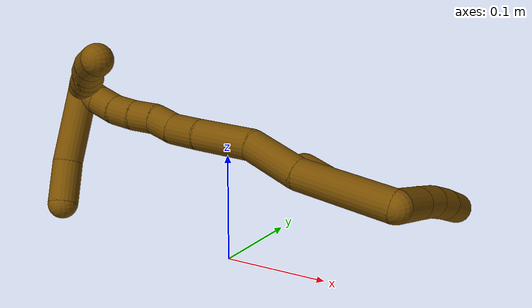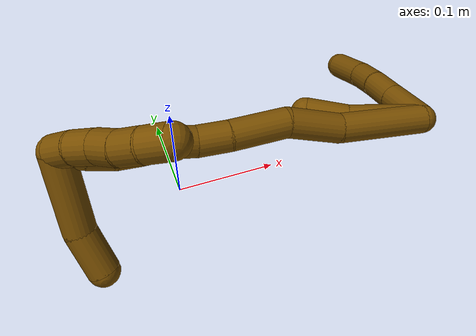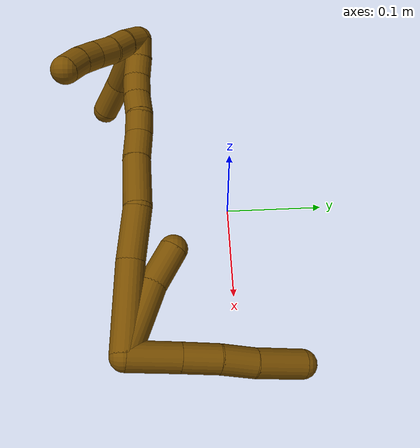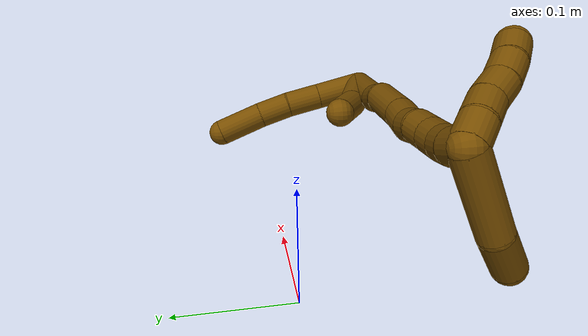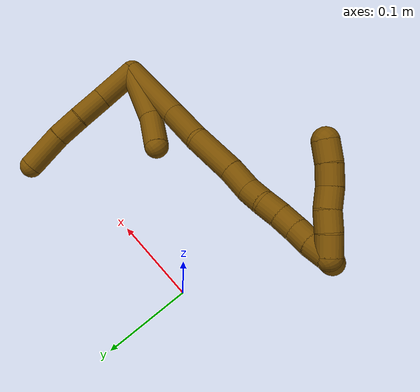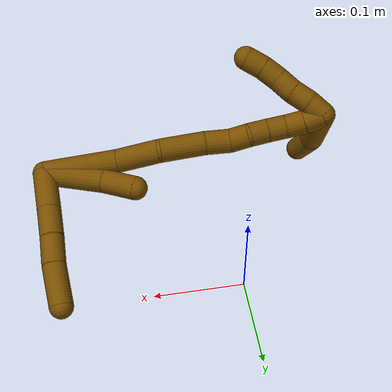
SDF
<sdf version="1.7">
 <world name="default">
  <model name="12">
   <static>0</static>
   <link name="12">
    <collision name="collision-cylinder-e_1_2_8">
     <pose>-0.000169 -0.004539 -0.021654 2.93497 -0.007652 -0.073768</pose>
     <geometry><cylinder><radius>0.0125</radius><length>0.04425</length></cylinder></geometry>
     <surface>
      <friction><ode><mu>1.16</mu><mu2>1.16</mu2><slip1>0</slip1><slip2>0</slip2></ode></friction>
      <contact><ode><kp>1e+06</kp><kd>1</kd><max_vel>0</max_vel><min_depth>0.001</min_depth></ode></contact>
     </surface>
    </collision>
    <visual name="visual-cylinder-e_1_2_8">
     <pose>-0.000169 -0.004539 -0.021654 2.93497 -0.007652 -0.073768</pose>
     <geometry><cylinder><radius>0.0125</radius><length>0.04425</length></cylinder></geometry>
     <material><ambient>0.466667 0.301961 0 1</ambient></material>
    </visual>
    <collision name="collision-cylinder-e_2_8_9">
     <pose>-0.000291 -0.012354 -0.058922 2.93476 0.002992 0.028831</pose>
     <geometry><cylinder><radius>0.0125</radius><length>0.031909</length></cylinder></geometry>
     <surface>
      <friction><ode><mu>1.16</mu><mu2>1.16</mu2><slip1>0</slip1><slip2>0</slip2></ode></friction>
      <contact><ode><kp>1e+06</kp><kd>1</kd><max_vel>0</max_vel><min_depth>0.001</min_depth></ode></contact>
     </surface>
    </collision>
    <visual name="visual-cylinder-e_2_8_9">
     <pose>-0.000291 -0.012354 -0.058922 2.93476 0.002992 0.028831</pose>
     <geometry><cylinder><radius>0.0125</radius><length>0.031909</length></cylinder></geometry>
     <material><ambient>0.466667 0.301961 0 1</ambient></material>
    </visual>
    <collision name="collision-cylinder-e_3_9_10">
     <pose>0.000468 -0.020099 -0.088816 2.83831 0.047513 0.308509</pose>
     <geometry><cylinder><radius>0.0125</radius><length>0.029958</length></cylinder></geometry>
     <surface>
      <friction><ode><mu>1.16</mu><mu2>1.16</mu2><slip1>0</slip1><slip2>0</slip2></ode></friction>
      <contact><ode><kp>1e+06</kp><kd>1</kd><max_vel>0</max_vel><min_depth>0.001</min_depth></ode></contact>
     </surface>
    </collision>
    <visual name="visual-cylinder-e_3_9_10">
     <pose>0.000468 -0.020099 -0.088816 2.83831 0.047513 0.308509</pose>
     <geometry><cylinder><radius>0.0125</radius><length>0.029958</length></cylinder></geometry>
     <material><ambient>0.466667 0.301961 0 1</ambient></material>
    </visual>
    <collision name="collision-cylinder-e_4_10_6">
     <pose>0.000134 -0.031973 -0.123722 2.79692 -0.047674 -0.272254</pose>
     <geometry><cylinder><radius>0.0125</radius><length>0.043883</length></cylinder></geometry>
     <surface>
      <friction><ode><mu>1.16</mu><mu2>1.16</mu2><slip1>0</slip1><slip2>0</slip2></ode></friction>
      <contact><ode><kp>1e+06</kp><kd>1</kd><max_vel>0</max_vel><min_depth>0.001</min_depth></ode></contact>
     </surface>
    </collision>
    <visual name="visual-cylinder-e_4_10_6">
     <pose>0.000134 -0.031973 -0.123722 2.79692 -0.047674 -0.272254</pose>
     <geometry><cylinder><radius>0.0125</radius><length>0.043883</length></cylinder></geometry>
     <material><ambient>0.466667 0.301961 0 1</ambient></material>
    </visual>
    <collision name="collision-cylinder-e_1_2_11">
     <pose>-0.030064 -0.002018 -0.010281 2.9478 -1.23547 -2.86966</pose>
     <geometry><cylinder><radius>0.0125</radius><length>0.063675</length></cylinder></geometry>
     <surface>
      <friction><ode><mu>1.16</mu><mu2>1.16</mu2><slip1>0</slip1><slip2>0</slip2></ode></friction>
      <contact><ode><kp>1e+06</kp><kd>1</kd><max_vel>0</max_vel><min_depth>0.001</min_depth></ode></contact>
     </surface>
    </collision>
    <visual name="visual-cylinder-e_1_2_11">
     <pose>-0.030064 -0.002018 -0.010281 2.9478 -1.23547 -2.86966</pose>
     <geometry><cylinder><radius>0.0125</radius><length>0.063675</length></cylinder></geometry>
     <material><ambient>0.466667 0.301961 0 1</ambient></material>
    </visual>
    <collision name="collision-cylinder-e_2_11_5">
     <pose>-0.076015 -0.003647 -0.029355 -3.09746 -1.06483 3.06671</pose>
     <geometry><cylinder><radius>0.0125</radius><length>0.036325</length></cylinder></geometry>
     <surface>
      <friction><ode><mu>1.16</mu><mu2>1.16</mu2><slip1>0</slip1><slip2>0</slip2></ode></friction>
      <contact><ode><kp>1e+06</kp><kd>1</kd><max_vel>0</max_vel><min_depth>0.001</min_depth></ode></contact>
     </surface>
    </collision>
    <visual name="visual-cylinder-e_2_11_5">
     <pose>-0.076015 -0.003647 -0.029355 -3.09746 -1.06483 3.06671</pose>
     <geometry><cylinder><radius>0.0125</radius><length>0.036325</length></cylinder></geometry>
     <material><ambient>0.466667 0.301961 0 1</ambient></material>
    </visual>
    <collision name="collision-cylinder-e_1_2_12">
     <pose>-0.039029 0.001919 -0.001488 -2.23023 -1.50866 2.18017</pose>
     <geometry><cylinder><radius>0.0125</radius><length>0.07821</length></cylinder></geometry>
     <surface>
      <friction><ode><mu>1.16</mu><mu2>1.16</mu2><slip1>0</slip1><slip2>0</slip2></ode></friction>
      <contact><ode><kp>1e+06</kp><kd>1</kd><max_vel>0</max_vel><min_depth>0.001</min_depth></ode></contact>
     </surface>
    </collision>
    <visual name="visual-cylinder-e_1_2_12">
     <pose>-0.039029 0.001919 -0.001488 -2.23023 -1.50866 2.18017</pose>
     <geometry><cylinder><radius>0.0125</radius><length>0.07821</length></cylinder></geometry>
     <material><ambient>0.466667 0.301961 0 1</ambient></material>
    </visual>
    <collision name="collision-cylinder-e_2_12_13">
     <pose>-0.100467 0.009393 -0.005846 -2.04777 -1.29867 1.78964</pose>
     <geometry><cylinder><radius>0.0125</radius><length>0.046528</length></cylinder></geometry>
     <surface>
      <friction><ode><mu>1.16</mu><mu2>1.16</mu2><slip1>0</slip1><slip2>0</slip2></ode></friction>
      <contact><ode><kp>1e+06</kp><kd>1</kd><max_vel>0</max_vel><min_depth>0.001</min_depth></ode></contact>
     </surface>
    </collision>
    <visual name="visual-cylinder-e_2_12_13">
     <pose>-0.100467 0.009393 -0.005846 -2.04777 -1.29867 1.78964</pose>
     <geometry><cylinder><radius>0.0125</radius><length>0.046528</length></cylinder></geometry>
     <material><ambient>0.466667 0.301961 0 1</ambient></material>
    </visual>
    <collision name="collision-cylinder-e_3_13_14">
     <pose>-0.14678 0.0142 -0.007708 0.638058 -1.51832 -0.607439</pose>
     <geometry><cylinder><radius>0.0125</radius><length>0.047877</length></cylinder></geometry>
     <surface>
      <friction><ode><mu>1.16</mu><mu2>1.16</mu2><slip1>0</slip1><slip2>0</slip2></ode></friction>
      <contact><ode><kp>1e+06</kp><kd>1</kd><max_vel>0</max_vel><min_depth>0.001</min_depth></ode></contact>
     </surface>
    </collision>
    <visual name="visual-cylinder-e_3_13_14">
     <pose>-0.14678 0.0142 -0.007708 0.638058 -1.51832 -0.607439</pose>
     <geometry><cylinder><radius>0.0125</radius><length>0.047877</length></cylinder></geometry>
     <material><ambient>0.466667 0.301961 0 1</ambient></material>
    </visual>
    <collision name="collision-cylinder-e_4_14_15">
     <pose>-0.18391 0.012905 -0.007447 2.50948 -1.50086 -2.46695</pose>
     <geometry><cylinder><radius>0.0125</radius><length>0.026515</length></cylinder></geometry>
     <surface>
      <friction><ode><mu>1.16</mu><mu2>1.16</mu2><slip1>0</slip1><slip2>0</slip2></ode></friction>
      <contact><ode><kp>1e+06</kp><kd>1</kd><max_vel>0</max_vel><min_depth>0.001</min_depth></ode></contact>
     </surface>
    </collision>
    <visual name="visual-cylinder-e_4_14_15">
     <pose>-0.18391 0.012905 -0.007447 2.50948 -1.50086 -2.46695</pose>
     <geometry><cylinder><radius>0.0125</radius><length>0.026515</length></cylinder></geometry>
     <material><ambient>0.466667 0.301961 0 1</ambient></material>
    </visual>
    <collision name="collision-cylinder-e_5_15_16">
     <pose>-0.206989 0.014492 -0.008381 -1.65797 -1.35666 1.44264</pose>
     <geometry><cylinder><radius>0.0125</radius><length>0.020167</length></cylinder></geometry>
     <surface>
      <friction><ode><mu>1.16</mu><mu2>1.16</mu2><slip1>0</slip1><slip2>0</slip2></ode></friction>
      <contact><ode><kp>1e+06</kp><kd>1</kd><max_vel>0</max_vel><min_depth>0.001</min_depth></ode></contact>
     </surface>
    </collision>
    <visual name="visual-cylinder-e_5_15_16">
     <pose>-0.206989 0.014492 -0.008381 -1.65797 -1.35666 1.44264</pose>
     <geometry><cylinder><radius>0.0125</radius><length>0.020167</length></cylinder></geometry>
     <material><ambient>0.466667 0.301961 0 1</ambient></material>
    </visual>
    <collision name="collision-cylinder-e_6_16_17">
     <pose>-0.22679 0.016401 -0.007277 0.17311 -1.4399 -0.151901</pose>
     <geometry><cylinder><radius>0.0125</radius><length>0.020068</length></cylinder></geometry>
     <surface>
      <friction><ode><mu>1.16</mu><mu2>1.16</mu2><slip1>0</slip1><slip2>0</slip2></ode></friction>
      <contact><ode><kp>1e+06</kp><kd>1</kd><max_vel>0</max_vel><min_depth>0.001</min_depth></ode></contact>
     </surface>
    </collision>
    <visual name="visual-cylinder-e_6_16_17">
     <pose>-0.22679 0.016401 -0.007277 0.17311 -1.4399 -0.151901</pose>
     <geometry><cylinder><radius>0.0125</radius><length>0.020068</length></cylinder></geometry>
     <material><ambient>0.466667 0.301961 0 1</ambient></material>
    </visual>
    <collision name="collision-cylinder-e_7_17_18">
     <pose>-0.246822 0.016649 -0.00568 -0.995385 -1.51496 0.949238</pose>
     <geometry><cylinder><radius>0.0125</radius><length>0.020201</length></cylinder></geometry>
     <surface>
      <friction><ode><mu>1.16</mu><mu2>1.16</mu2><slip1>0</slip1><slip2>0</slip2></ode></friction>
      <contact><ode><kp>1e+06</kp><kd>1</kd><max_vel>0</max_vel><min_depth>0.001</min_depth></ode></contact>
     </surface>
    </collision>
    <visual name="visual-cylinder-e_7_17_18">
     <pose>-0.246822 0.016649 -0.00568 -0.995385 -1.51496 0.949238</pose>
     <geometry><cylinder><radius>0.0125</radius><length>0.020201</length></cylinder></geometry>
     <material><ambient>0.466667 0.301961 0 1</ambient></material>
    </visual>
    <collision name="collision-cylinder-e_8_18_19">
     <pose>-0.266776 0.019225 -0.006166 -1.93079 -1.34685 1.71252</pose>
     <geometry><cylinder><radius>0.0125</radius><length>0.020244</length></cylinder></geometry>
     <surface>
      <friction><ode><mu>1.16</mu><mu2>1.16</mu2><slip1>0</slip1><slip2>0</slip2></ode></friction>
      <contact><ode><kp>1e+06</kp><kd>1</kd><max_vel>0</max_vel><min_depth>0.001</min_depth></ode></contact>
     </surface>
    </collision>
    <visual name="visual-cylinder-e_8_18_19">
     <pose>-0.266776 0.019225 -0.006166 -1.93079 -1.34685 1.71252</pose>
     <geometry><cylinder><radius>0.0125</radius><length>0.020244</length></cylinder></geometry>
     <material><ambient>0.466667 0.301961 0 1</ambient></material>
    </visual>
    <collision name="collision-cylinder-e_9_19_1">
     <pose>-0.286289 0.024315 -0.006906 -1.55367 -1.27054 1.25422</pose>
     <geometry><cylinder><radius>0.0125</radius><length>0.020192</length></cylinder></geometry>
     <surface>
      <friction><ode><mu>1.16</mu><mu2>1.16</mu2><slip1>0</slip1><slip2>0</slip2></ode></friction>
      <contact><ode><kp>1e+06</kp><kd>1</kd><max_vel>0</max_vel><min_depth>0.001</min_depth></ode></contact>
     </surface>
    </collision>
    <visual name="visual-cylinder-e_9_19_1">
     <pose>-0.286289 0.024315 -0.006906 -1.55367 -1.27054 1.25422</pose>
     <geometry><cylinder><radius>0.0125</radius><length>0.020192</length></cylinder></geometry>
     <material><ambient>0.466667 0.301961 0 1</ambient></material>
    </visual>
    <collision name="collision-cylinder-e_1_1_20">
     <pose>-0.293055 -0.002186 0.004759 1.19558 0.09059 0.061705</pose>
     <geometry><cylinder><radius>0.0125</radius><length>0.063644</length></cylinder></geometry>
     <surface>
      <friction><ode><mu>1.16</mu><mu2>1.16</mu2><slip1>0</slip1><slip2>0</slip2></ode></friction>
      <contact><ode><kp>1e+06</kp><kd>1</kd><max_vel>0</max_vel><min_depth>0.001</min_depth></ode></contact>
     </surface>
    </collision>
    <visual name="visual-cylinder-e_1_1_20">
     <pose>-0.293055 -0.002186 0.004759 1.19558 0.09059 0.061705</pose>
     <geometry><cylinder><radius>0.0125</radius><length>0.063644</length></cylinder></geometry>
     <material><ambient>0.466667 0.301961 0 1</ambient></material>
    </visual>
    <collision name="collision-cylinder-e_2_20_4">
     <pose>-0.284467 -0.04684 0.024608 1.07337 0.319454 0.191102</pose>
     <geometry><cylinder><radius>0.0125</radius><length>0.036356</length></cylinder></geometry>
     <surface>
      <friction><ode><mu>1.16</mu><mu2>1.16</mu2><slip1>0</slip1><slip2>0</slip2></ode></friction>
      <contact><ode><kp>1e+06</kp><kd>1</kd><max_vel>0</max_vel><min_depth>0.001</min_depth></ode></contact>
     </surface>
    </collision>
    <visual name="visual-cylinder-e_2_20_4">
     <pose>-0.284467 -0.04684 0.024608 1.07337 0.319454 0.191102</pose>
     <geometry><cylinder><radius>0.0125</radius><length>0.036356</length></cylinder></geometry>
     <material><ambient>0.466667 0.301961 0 1</ambient></material>
    </visual>
    <collision name="collision-cylinder-e_1_1_21">
     <pose>-0.289459 0.032382 -0.001176 -0.72997 0.70421 -0.27896</pose>
     <geometry><cylinder><radius>0.0125</radius><length>0.02</length></cylinder></geometry>
     <surface>
      <friction><ode><mu>1.16</mu><mu2>1.16</mu2><slip1>0</slip1><slip2>0</slip2></ode></friction>
      <contact><ode><kp>1e+06</kp><kd>1</kd><max_vel>0</max_vel><min_depth>0.001</min_depth></ode></contact>
     </surface>
    </collision>
    <visual name="visual-cylinder-e_1_1_21">
     <pose>-0.289459 0.032382 -0.001176 -0.72997 0.70421 -0.27896</pose>
     <geometry><cylinder><radius>0.0125</radius><length>0.02</length></cylinder></geometry>
     <material><ambient>0.466667 0.301961 0 1</ambient></material>
    </visual>
    <collision name="collision-cylinder-e_2_21_22">
     <pose>-0.275663 0.041286 0.010142 -0.595634 0.821501 -0.265789</pose>
     <geometry><cylinder><radius>0.0125</radius><length>0.02</length></cylinder></geometry>
     <surface>
      <friction><ode><mu>1.16</mu><mu2>1.16</mu2><slip1>0</slip1><slip2>0</slip2></ode></friction>
      <contact><ode><kp>1e+06</kp><kd>1</kd><max_vel>0</max_vel><min_depth>0.001</min_depth></ode></contact>
     </surface>
    </collision>
    <visual name="visual-cylinder-e_2_21_22">
     <pose>-0.275663 0.041286 0.010142 -0.595634 0.821501 -0.265789</pose>
     <geometry><cylinder><radius>0.0125</radius><length>0.02</length></cylinder></geometry>
     <material><ambient>0.466667 0.301961 0 1</ambient></material>
    </visual>
    <collision name="collision-cylinder-e_3_22_23">
     <pose>-0.262204 0.048879 0.022716 -0.498022 0.660837 -0.173998</pose>
     <geometry><cylinder><radius>0.0125</radius><length>0.02</length></cylinder></geometry>
     <surface>
      <friction><ode><mu>1.16</mu><mu2>1.16</mu2><slip1>0</slip1><slip2>0</slip2></ode></friction>
      <contact><ode><kp>1e+06</kp><kd>1</kd><max_vel>0</max_vel><min_depth>0.001</min_depth></ode></contact>
     </surface>
    </collision>
    <visual name="visual-cylinder-e_3_22_23">
     <pose>-0.262204 0.048879 0.022716 -0.498022 0.660837 -0.173998</pose>
     <geometry><cylinder><radius>0.0125</radius><length>0.02</length></cylinder></geometry>
     <material><ambient>0.466667 0.301961 0 1</ambient></material>
    </visual>
    <collision name="collision-cylinder-e_4_23_24">
     <pose>-0.249164 0.057175 0.035298 -0.675631 0.761737 -0.279486</pose>
     <geometry><cylinder><radius>0.0125</radius><length>0.02</length></cylinder></geometry>
     <surface>
      <friction><ode><mu>1.16</mu><mu2>1.16</mu2><slip1>0</slip1><slip2>0</slip2></ode></friction>
      <contact><ode><kp>1e+06</kp><kd>1</kd><max_vel>0</max_vel><min_depth>0.001</min_depth></ode></contact>
     </surface>
    </collision>
    <visual name="visual-cylinder-e_4_23_24">
     <pose>-0.249164 0.057175 0.035298 -0.675631 0.761737 -0.279486</pose>
     <geometry><cylinder><radius>0.0125</radius><length>0.02</length></cylinder></geometry>
     <material><ambient>0.466667 0.301961 0 1</ambient></material>
    </visual>
    <collision name="collision-cylinder-e_5_24_3">
     <pose>-0.234388 0.065577 0.045738 -0.680023 0.90665 -0.341315</pose>
     <geometry><cylinder><radius>0.0125</radius><length>0.02</length></cylinder></geometry>
     <surface>
      <friction><ode><mu>1.16</mu><mu2>1.16</mu2><slip1>0</slip1><slip2>0</slip2></ode></friction>
      <contact><ode><kp>1e+06</kp><kd>1</kd><max_vel>0</max_vel><min_depth>0.001</min_depth></ode></contact>
     </surface>
    </collision>
    <visual name="visual-cylinder-e_5_24_3">
     <pose>-0.234388 0.065577 0.045738 -0.680023 0.90665 -0.341315</pose>
     <geometry><cylinder><radius>0.0125</radius><length>0.02</length></cylinder></geometry>
     <material><ambient>0.466667 0.301961 0 1</ambient></material>
    </visual>
    <collision name="collision-sphere-3">
     <pose>-0.226514 0.069453 0.05053 0 -0 0</pose>
     <geometry><sphere><radius>0.0125</radius></sphere></geometry>
     <surface>
      <friction><ode><mu>1.16</mu><mu2>1.16</mu2><slip1>0</slip1><slip2>0</slip2></ode></friction>
      <contact><ode><kp>1e+06</kp><kd>1</kd><max_vel>0</max_vel><min_depth>0.001</min_depth></ode></contact>
     </surface>
    </collision>
    <visual name="visual-sphere-3">
     <pose>-0.226514 0.069453 0.05053 0 -0 0</pose>
     <geometry><sphere><radius>0.0125</radius></sphere></geometry>
     <material><ambient>0.466667 0.301961 0 1</ambient></material>
    </visual>
    <collision name="collision-sphere-24">
     <pose>-0.242262 0.061701 0.040945 0 -0 0</pose>
     <geometry><sphere><radius>0.0125</radius></sphere></geometry>
     <surface>
      <friction><ode><mu>1.16</mu><mu2>1.16</mu2><slip1>0</slip1><slip2>0</slip2></ode></friction>
      <contact><ode><kp>1e+06</kp><kd>1</kd><max_vel>0</max_vel><min_depth>0.001</min_depth></ode></contact>
     </surface>
    </collision>
    <visual name="visual-sphere-24">
     <pose>-0.242262 0.061701 0.040945 0 -0 0</pose>
     <geometry><sphere><radius>0.0125</radius></sphere></geometry>
     <material><ambient>0.466667 0.301961 0 1</ambient></material>
    </visual>
    <collision name="collision-sphere-23">
     <pose>-0.256066 0.05265 0.029652 0 -0 0</pose>
     <geometry><sphere><radius>0.0125</radius></sphere></geometry>
     <surface>
      <friction><ode><mu>1.16</mu><mu2>1.16</mu2><slip1>0</slip1><slip2>0</slip2></ode></friction>
      <contact><ode><kp>1e+06</kp><kd>1</kd><max_vel>0</max_vel><min_depth>0.001</min_depth></ode></contact>
     </surface>
    </collision>
    <visual name="visual-sphere-23">
     <pose>-0.256066 0.05265 0.029652 0 -0 0</pose>
     <geometry><sphere><radius>0.0125</radius></sphere></geometry>
     <material><ambient>0.466667 0.301961 0 1</ambient></material>
    </visual>
    <collision name="collision-sphere-22">
     <pose>-0.268342 0.045107 0.01578 0 -0 0</pose>
     <geometry><sphere><radius>0.0125</radius></sphere></geometry>
     <surface>
      <friction><ode><mu>1.16</mu><mu2>1.16</mu2><slip1>0</slip1><slip2>0</slip2></ode></friction>
      <contact><ode><kp>1e+06</kp><kd>1</kd><max_vel>0</max_vel><min_depth>0.001</min_depth></ode></contact>
     </surface>
    </collision>
    <visual name="visual-sphere-22">
     <pose>-0.268342 0.045107 0.01578 0 -0 0</pose>
     <geometry><sphere><radius>0.0125</radius></sphere></geometry>
     <material><ambient>0.466667 0.301961 0 1</ambient></material>
    </visual>
    <collision name="collision-sphere-21">
     <pose>-0.282985 0.037465 0.004503 0 -0 0</pose>
     <geometry><sphere><radius>0.0125</radius></sphere></geometry>
     <surface>
      <friction><ode><mu>1.16</mu><mu2>1.16</mu2><slip1>0</slip1><slip2>0</slip2></ode></friction>
      <contact><ode><kp>1e+06</kp><kd>1</kd><max_vel>0</max_vel><min_depth>0.001</min_depth></ode></contact>
     </surface>
    </collision>
    <visual name="visual-sphere-21">
     <pose>-0.282985 0.037465 0.004503 0 -0 0</pose>
     <geometry><sphere><radius>0.0125</radius></sphere></geometry>
     <material><ambient>0.466667 0.301961 0 1</ambient></material>
    </visual>
    <collision name="collision-sphere-4">
     <pose>-0.278758 -0.062007 0.032843 0 -0 0</pose>
     <geometry><sphere><radius>0.0125</radius></sphere></geometry>
     <surface>
      <friction><ode><mu>1.16</mu><mu2>1.16</mu2><slip1>0</slip1><slip2>0</slip2></ode></friction>
      <contact><ode><kp>1e+06</kp><kd>1</kd><max_vel>0</max_vel><min_depth>0.001</min_depth></ode></contact>
     </surface>
    </collision>
    <visual name="visual-sphere-4">
     <pose>-0.278758 -0.062007 0.032843 0 -0 0</pose>
     <geometry><sphere><radius>0.0125</radius></sphere></geometry>
     <material><ambient>0.466667 0.301961 0 1</ambient></material>
    </visual>
    <collision name="collision-sphere-20">
     <pose>-0.290176 -0.031673 0.016373 0 -0 0</pose>
     <geometry><sphere><radius>0.0125</radius></sphere></geometry>
     <surface>
      <friction><ode><mu>1.16</mu><mu2>1.16</mu2><slip1>0</slip1><slip2>0</slip2></ode></friction>
      <contact><ode><kp>1e+06</kp><kd>1</kd><max_vel>0</max_vel><min_depth>0.001</min_depth></ode></contact>
     </surface>
    </collision>
    <visual name="visual-sphere-20">
     <pose>-0.290176 -0.031673 0.016373 0 -0 0</pose>
     <geometry><sphere><radius>0.0125</radius></sphere></geometry>
     <material><ambient>0.466667 0.301961 0 1</ambient></material>
    </visual>
    <collision name="collision-sphere-11">
     <pose>-0.060128 -0.004035 -0.020561 0 -0 0</pose>
     <geometry><sphere><radius>0.0125</radius></sphere></geometry>
     <surface>
      <friction><ode><mu>1.16</mu><mu2>1.16</mu2><slip1>0</slip1><slip2>0</slip2></ode></friction>
      <contact><ode><kp>1e+06</kp><kd>1</kd><max_vel>0</max_vel><min_depth>0.001</min_depth></ode></contact>
     </surface>
    </collision>
    <visual name="visual-sphere-11">
     <pose>-0.060128 -0.004035 -0.020561 0 -0 0</pose>
     <geometry><sphere><radius>0.0125</radius></sphere></geometry>
     <material><ambient>0.466667 0.301961 0 1</ambient></material>
    </visual>
    <collision name="collision-sphere-6">
     <pose>-0.000912 -0.039378 -0.14435 0 -0 0</pose>
     <geometry><sphere><radius>0.0125</radius></sphere></geometry>
     <surface>
      <friction><ode><mu>1.16</mu><mu2>1.16</mu2><slip1>0</slip1><slip2>0</slip2></ode></friction>
      <contact><ode><kp>1e+06</kp><kd>1</kd><max_vel>0</max_vel><min_depth>0.001</min_depth></ode></contact>
     </surface>
    </collision>
    <visual name="visual-sphere-6">
     <pose>-0.000912 -0.039378 -0.14435 0 -0 0</pose>
     <geometry><sphere><radius>0.0125</radius></sphere></geometry>
     <material><ambient>0.466667 0.301961 0 1</ambient></material>
    </visual>
    <collision name="collision-sphere-10">
     <pose>0.00118 -0.024568 -0.103095 0 -0 0</pose>
     <geometry><sphere><radius>0.0125</radius></sphere></geometry>
     <surface>
      <friction><ode><mu>1.16</mu><mu2>1.16</mu2><slip1>0</slip1><slip2>0</slip2></ode></friction>
      <contact><ode><kp>1e+06</kp><kd>1</kd><max_vel>0</max_vel><min_depth>0.001</min_depth></ode></contact>
     </surface>
    </collision>
    <visual name="visual-sphere-10">
     <pose>0.00118 -0.024568 -0.103095 0 -0 0</pose>
     <geometry><sphere><radius>0.0125</radius></sphere></geometry>
     <material><ambient>0.466667 0.301961 0 1</ambient></material>
    </visual>
    <collision name="collision-sphere-9">
     <pose>-0.000243 -0.015631 -0.074536 0 -0 0</pose>
     <geometry><sphere><radius>0.0125</radius></sphere></geometry>
     <surface>
      <friction><ode><mu>1.16</mu><mu2>1.16</mu2><slip1>0</slip1><slip2>0</slip2></ode></friction>
      <contact><ode><kp>1e+06</kp><kd>1</kd><max_vel>0</max_vel><min_depth>0.001</min_depth></ode></contact>
     </surface>
    </collision>
    <visual name="visual-sphere-9">
     <pose>-0.000243 -0.015631 -0.074536 0 -0 0</pose>
     <geometry><sphere><radius>0.0125</radius></sphere></geometry>
     <material><ambient>0.466667 0.301961 0 1</ambient></material>
    </visual>
    <collision name="collision-sphere-2">
     <geometry><sphere><radius>0.0125</radius></sphere></geometry>
     <surface>
      <friction><ode><mu>1.16</mu><mu2>1.16</mu2><slip1>0</slip1><slip2>0</slip2></ode></friction>
      <contact><ode><kp>1e+06</kp><kd>1</kd><max_vel>0</max_vel><min_depth>0.001</min_depth></ode></contact>
     </surface>
    </collision>
    <visual name="visual-sphere-2">
     <geometry><sphere><radius>0.0125</radius></sphere></geometry>
     <material><ambient>0.466667 0.301961 0 1</ambient></material>
    </visual>
    <collision name="collision-sphere-19">
     <pose>-0.276645 0.021329 -0.006957 0 -0 0</pose>
     <geometry><sphere><radius>0.0125</radius></sphere></geometry>
     <surface>
      <friction><ode><mu>1.16</mu><mu2>1.16</mu2><slip1>0</slip1><slip2>0</slip2></ode></friction>
      <contact><ode><kp>1e+06</kp><kd>1</kd><max_vel>0</max_vel><min_depth>0.001</min_depth></ode></contact>
     </surface>
    </collision>
    <visual name="visual-sphere-19">
     <pose>-0.276645 0.021329 -0.006957 0 -0 0</pose>
     <geometry><sphere><radius>0.0125</radius></sphere></geometry>
     <material><ambient>0.466667 0.301961 0 1</ambient></material>
    </visual>
    <collision name="collision-sphere-8">
     <pose>-0.000339 -0.009078 -0.043307 0 -0 0</pose>
     <geometry><sphere><radius>0.0125</radius></sphere></geometry>
     <surface>
      <friction><ode><mu>1.16</mu><mu2>1.16</mu2><slip1>0</slip1><slip2>0</slip2></ode></friction>
      <contact><ode><kp>1e+06</kp><kd>1</kd><max_vel>0</max_vel><min_depth>0.001</min_depth></ode></contact>
     </surface>
    </collision>
    <visual name="visual-sphere-8">
     <pose>-0.000339 -0.009078 -0.043307 0 -0 0</pose>
     <geometry><sphere><radius>0.0125</radius></sphere></geometry>
     <material><ambient>0.466667 0.301961 0 1</ambient></material>
    </visual>
    <collision name="collision-sphere-5">
     <pose>-0.091902 -0.003259 -0.038149 0 -0 0</pose>
     <geometry><sphere><radius>0.0125</radius></sphere></geometry>
     <surface>
      <friction><ode><mu>1.16</mu><mu2>1.16</mu2><slip1>0</slip1><slip2>0</slip2></ode></friction>
      <contact><ode><kp>1e+06</kp><kd>1</kd><max_vel>0</max_vel><min_depth>0.001</min_depth></ode></contact>
     </surface>
    </collision>
    <visual name="visual-sphere-5">
     <pose>-0.091902 -0.003259 -0.038149 0 -0 0</pose>
     <geometry><sphere><radius>0.0125</radius></sphere></geometry>
     <material><ambient>0.466667 0.301961 0 1</ambient></material>
    </visual>
    <collision name="collision-sphere-12">
     <pose>-0.078059 0.003838 -0.002975 0 -0 0</pose>
     <geometry><sphere><radius>0.0125</radius></sphere></geometry>
     <surface>
      <friction><ode><mu>1.16</mu><mu2>1.16</mu2><slip1>0</slip1><slip2>0</slip2></ode></friction>
      <contact><ode><kp>1e+06</kp><kd>1</kd><max_vel>0</max_vel><min_depth>0.001</min_depth></ode></contact>
     </surface>
    </collision>
    <visual name="visual-sphere-12">
     <pose>-0.078059 0.003838 -0.002975 0 -0 0</pose>
     <geometry><sphere><radius>0.0125</radius></sphere></geometry>
     <material><ambient>0.466667 0.301961 0 1</ambient></material>
    </visual>
    <collision name="collision-sphere-13">
     <pose>-0.122874 0.014948 -0.008717 0 -0 0</pose>
     <geometry><sphere><radius>0.0125</radius></sphere></geometry>
     <surface>
      <friction><ode><mu>1.16</mu><mu2>1.16</mu2><slip1>0</slip1><slip2>0</slip2></ode></friction>
      <contact><ode><kp>1e+06</kp><kd>1</kd><max_vel>0</max_vel><min_depth>0.001</min_depth></ode></contact>
     </surface>
    </collision>
    <visual name="visual-sphere-13">
     <pose>-0.122874 0.014948 -0.008717 0 -0 0</pose>
     <geometry><sphere><radius>0.0125</radius></sphere></geometry>
     <material><ambient>0.466667 0.301961 0 1</ambient></material>
    </visual>
    <collision name="collision-sphere-14">
     <pose>-0.170685 0.013452 -0.006699 0 -0 0</pose>
     <geometry><sphere><radius>0.0125</radius></sphere></geometry>
     <surface>
      <friction><ode><mu>1.16</mu><mu2>1.16</mu2><slip1>0</slip1><slip2>0</slip2></ode></friction>
      <contact><ode><kp>1e+06</kp><kd>1</kd><max_vel>0</max_vel><min_depth>0.001</min_depth></ode></contact>
     </surface>
    </collision>
    <visual name="visual-sphere-14">
     <pose>-0.170685 0.013452 -0.006699 0 -0 0</pose>
     <geometry><sphere><radius>0.0125</radius></sphere></geometry>
     <material><ambient>0.466667 0.301961 0 1</ambient></material>
    </visual>
    <collision name="collision-sphere-15">
     <pose>-0.197135 0.012358 -0.008194 0 -0 0</pose>
     <geometry><sphere><radius>0.0125</radius></sphere></geometry>
     <surface>
      <friction><ode><mu>1.16</mu><mu2>1.16</mu2><slip1>0</slip1><slip2>0</slip2></ode></friction>
      <contact><ode><kp>1e+06</kp><kd>1</kd><max_vel>0</max_vel><min_depth>0.001</min_depth></ode></contact>
     </surface>
    </collision>
    <visual name="visual-sphere-15">
     <pose>-0.197135 0.012358 -0.008194 0 -0 0</pose>
     <geometry><sphere><radius>0.0125</radius></sphere></geometry>
     <material><ambient>0.466667 0.301961 0 1</ambient></material>
    </visual>
    <collision name="collision-sphere-16">
     <pose>-0.216842 0.016627 -0.008567 0 -0 0</pose>
     <geometry><sphere><radius>0.0125</radius></sphere></geometry>
     <surface>
      <friction><ode><mu>1.16</mu><mu2>1.16</mu2><slip1>0</slip1><slip2>0</slip2></ode></friction>
      <contact><ode><kp>1e+06</kp><kd>1</kd><max_vel>0</max_vel><min_depth>0.001</min_depth></ode></contact>
     </surface>
    </collision>
    <visual name="visual-sphere-16">
     <pose>-0.216842 0.016627 -0.008567 0 -0 0</pose>
     <geometry><sphere><radius>0.0125</radius></sphere></geometry>
     <material><ambient>0.466667 0.301961 0 1</ambient></material>
    </visual>
    <collision name="collision-sphere-17">
     <pose>-0.236738 0.016176 -0.005987 0 -0 0</pose>
     <geometry><sphere><radius>0.0125</radius></sphere></geometry>
     <surface>
      <friction><ode><mu>1.16</mu><mu2>1.16</mu2><slip1>0</slip1><slip2>0</slip2></ode></friction>
      <contact><ode><kp>1e+06</kp><kd>1</kd><max_vel>0</max_vel><min_depth>0.001</min_depth></ode></contact>
     </surface>
    </collision>
    <visual name="visual-sphere-17">
     <pose>-0.236738 0.016176 -0.005987 0 -0 0</pose>
     <geometry><sphere><radius>0.0125</radius></sphere></geometry>
     <material><ambient>0.466667 0.301961 0 1</ambient></material>
    </visual>
    <collision name="collision-sphere-18">
     <pose>-0.256907 0.017122 -0.005374 0 -0 0</pose>
     <geometry><sphere><radius>0.0125</radius></sphere></geometry>
     <surface>
      <friction><ode><mu>1.16</mu><mu2>1.16</mu2><slip1>0</slip1><slip2>0</slip2></ode></friction>
      <contact><ode><kp>1e+06</kp><kd>1</kd><max_vel>0</max_vel><min_depth>0.001</min_depth></ode></contact>
     </surface>
    </collision>
    <visual name="visual-sphere-18">
     <pose>-0.256907 0.017122 -0.005374 0 -0 0</pose>
     <geometry><sphere><radius>0.0125</radius></sphere></geometry>
     <material><ambient>0.466667 0.301961 0 1</ambient></material>
    </visual>
    <collision name="collision-sphere-1">
     <pose>-0.295934 0.0273 -0.006855 0 -0 0</pose>
     <geometry><sphere><radius>0.0125</radius></sphere></geometry>
     <surface>
      <friction><ode><mu>1.16</mu><mu2>1.16</mu2><slip1>0</slip1><slip2>0</slip2></ode></friction>
      <contact><ode><kp>1e+06</kp><kd>1</kd><max_vel>0</max_vel><min_depth>0.001</min_depth></ode></contact>
     </surface>
    </collision>
    <visual name="visual-sphere-1">
     <pose>-0.295934 0.0273 -0.006855 0 -0 0</pose>
     <geometry><sphere><radius>0.0125</radius></sphere></geometry>
     <material><ambient>0.466667 0.301961 0 1</ambient></material>
    </visual>
    <inertial>
     <pose>-0.139209 0.004866 -0.014462 0 -0 0</pose>
     <mass>0.75</mass>
     <inertia><ixx>2.6e-05</ixx><ixy>0</ixy><ixz>0</ixz><iyy>9.5e-05</iyy><iyz>0</iyz><izz>0.000112</izz></inertia>
    </inertial>
   </link>
   <pose>0.199212 -0.09495 0.113487 1.55 0.080603 -0.019268</pose>
  </model>
 </world>
</sdf>
